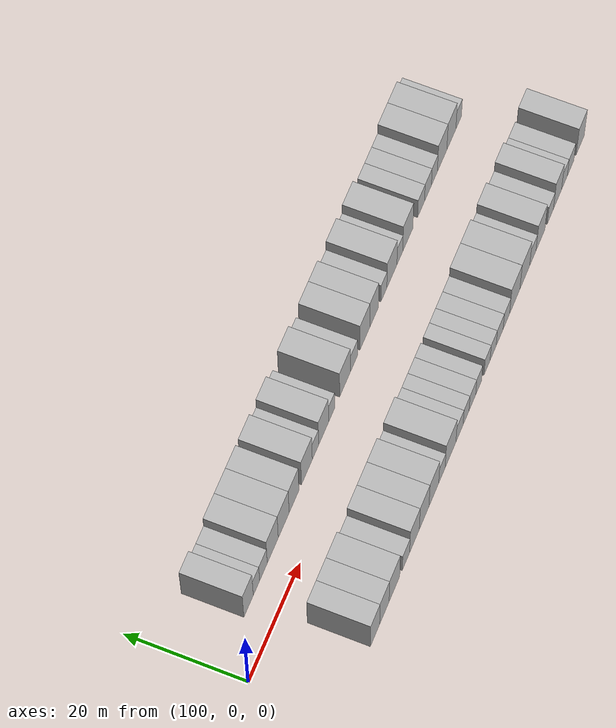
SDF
<sdf version="1.6">
 <world name="default">
  <model name="building_26">
   <static>1</static>
   <pose>110.8466 9.5000 0 0.000000 0.000000 1.570796</pose>
   <link name="link">
    <pose>0 0 4.50 0 0 0</pose>
    <collision name="collision"><geometry><box><size>10.0000 3.6311 9.0000</size></box></geometry></collision>
    <visual name="visual">
     <cast_shadows>0</cast_shadows>
     <geometry><box><size>10.0000 3.6311 9.0000</size></box></geometry>
     <material>
      <script>
       <uri>model://HANNAS_wall/materials/scripts</uri>
       <uri>model://HANNAS_wall/materials/textures</uri>
       <name>vrc/HANNAS_wall</name>
      </script>
     </material>
    </visual>
   </link>
  </model>
  <model name="building_27">
   <static>1</static>
   <pose>113.8942 9.5000 0 0.000000 0.000000 1.570796</pose>
   <link name="link">
    <pose>0 0 3.00 0 0 0</pose>
    <collision name="collision"><geometry><box><size>10.0000 2.4641 6.0000</size></box></geometry></collision>
    <visual name="visual">
     <cast_shadows>0</cast_shadows>
     <geometry><box><size>10.0000 2.4641 6.0000</size></box></geometry>
     <material>
      <script>
       <uri>model://HANNAS_wall/materials/scripts</uri>
       <uri>model://HANNAS_wall/materials/textures</uri>
       <name>vrc/HANNAS_wall</name>
      </script>
     </material>
    </visual>
   </link>
  </model>
  <model name="building_28">
   <static>1</static>
   <pose>116.6158 9.5000 0 0.000000 0.000000 1.570796</pose>
   <link name="link">
    <pose>0 0 3.00 0 0 0</pose>
    <collision name="collision"><geometry><box><size>10.0000 2.9791 6.0000</size></box></geometry></collision>
    <visual name="visual">
     <cast_shadows>0</cast_shadows>
     <geometry><box><size>10.0000 2.9791 6.0000</size></box></geometry>
     <material>
      <script>
       <uri>model://HANNAS_wall/materials/scripts</uri>
       <uri>model://HANNAS_wall/materials/textures</uri>
       <name>vrc/HANNAS_wall</name>
      </script>
     </material>
    </visual>
   </link>
  </model>
  <model name="building_29">
   <static>1</static>
   <pose>120.2576 9.5000 0 0.000000 0.000000 1.570796</pose>
   <link name="link">
    <pose>0 0 4.50 0 0 0</pose>
    <collision name="collision"><geometry><box><size>10.0000 4.3044 9.0000</size></box></geometry></collision>
    <visual name="visual">
     <cast_shadows>0</cast_shadows>
     <geometry><box><size>10.0000 4.3044 9.0000</size></box></geometry>
     <material>
      <script>
       <uri>model://HANNAS_wall/materials/scripts</uri>
       <uri>model://HANNAS_wall/materials/textures</uri>
       <name>vrc/HANNAS_wall</name>
      </script>
     </material>
    </visual>
   </link>
  </model>
  <model name="building_30">
   <static>1</static>
   <pose>124.5517 9.5000 0 0.000000 0.000000 1.570796</pose>
   <link name="link">
    <pose>0 0 4.50 0 0 0</pose>
    <collision name="collision"><geometry><box><size>10.0000 4.2838 9.0000</size></box></geometry></collision>
    <visual name="visual">
     <cast_shadows>0</cast_shadows>
     <geometry><box><size>10.0000 4.2838 9.0000</size></box></geometry>
     <material>
      <script>
       <uri>model://HANNAS_wall/materials/scripts</uri>
       <uri>model://HANNAS_wall/materials/textures</uri>
       <name>vrc/HANNAS_wall</name>
      </script>
     </material>
    </visual>
   </link>
  </model>
  <model name="building_31">
   <static>1</static>
   <pose>128.6397 9.5000 0 0.000000 0.000000 1.570796</pose>
   <link name="link">
    <pose>0 0 4.50 0 0 0</pose>
    <collision name="collision"><geometry><box><size>10.0000 3.8923 9.0000</size></box></geometry></collision>
    <visual name="visual">
     <cast_shadows>0</cast_shadows>
     <geometry><box><size>10.0000 3.8923 9.0000</size></box></geometry>
     <material>
      <script>
       <uri>model://HANNAS_wall/materials/scripts</uri>
       <uri>model://HANNAS_wall/materials/textures</uri>
       <name>vrc/HANNAS_wall</name>
      </script>
     </material>
    </visual>
   </link>
  </model>
  <model name="building_32">
   <static>1</static>
   <pose>133.7341 9.5000 0 0.000000 0.000000 1.570796</pose>
   <link name="link">
    <pose>0 0 4.50 0 0 0</pose>
    <collision name="collision"><geometry><box><size>10.0000 4.2966 9.0000</size></box></geometry></collision>
    <visual name="visual">
     <cast_shadows>0</cast_shadows>
     <geometry><box><size>10.0000 4.2966 9.0000</size></box></geometry>
     <material>
      <script>
       <uri>model://HANNAS_wall/materials/scripts</uri>
       <uri>model://HANNAS_wall/materials/textures</uri>
       <name>vrc/HANNAS_wall</name>
      </script>
     </material>
    </visual>
   </link>
  </model>
  <model name="building_33">
   <static>1</static>
   <pose>137.1597 9.5000 0 0.000000 0.000000 1.570796</pose>
   <link name="link">
    <pose>0 0 3.00 0 0 0</pose>
    <collision name="collision"><geometry><box><size>10.0000 2.5544 6.0000</size></box></geometry></collision>
    <visual name="visual">
     <cast_shadows>0</cast_shadows>
     <geometry><box><size>10.0000 2.5544 6.0000</size></box></geometry>
     <material>
      <script>
       <uri>model://HANNAS_wall/materials/scripts</uri>
       <uri>model://HANNAS_wall/materials/textures</uri>
       <name>vrc/HANNAS_wall</name>
      </script>
     </material>
    </visual>
   </link>
  </model>
  <model name="building_34">
   <static>1</static>
   <pose>140.4432 9.5000 0 0.000000 0.000000 1.570796</pose>
   <link name="link">
    <pose>0 0 4.50 0 0 0</pose>
    <collision name="collision"><geometry><box><size>10.0000 4.0127 9.0000</size></box></geometry></collision>
    <visual name="visual">
     <cast_shadows>0</cast_shadows>
     <geometry><box><size>10.0000 4.0127 9.0000</size></box></geometry>
     <material>
      <script>
       <uri>model://HANNAS_wall/materials/scripts</uri>
       <uri>model://HANNAS_wall/materials/textures</uri>
       <name>vrc/HANNAS_wall</name>
      </script>
     </material>
    </visual>
   </link>
  </model>
  <model name="building_35">
   <static>1</static>
   <pose>143.6818 9.5000 0 0.000000 0.000000 1.570796</pose>
   <link name="link">
    <pose>0 0 3.00 0 0 0</pose>
    <collision name="collision"><geometry><box><size>10.0000 2.4644 6.0000</size></box></geometry></collision>
    <visual name="visual">
     <cast_shadows>0</cast_shadows>
     <geometry><box><size>10.0000 2.4644 6.0000</size></box></geometry>
     <material>
      <script>
       <uri>model://HANNAS_wall/materials/scripts</uri>
       <uri>model://HANNAS_wall/materials/textures</uri>
       <name>vrc/HANNAS_wall</name>
      </script>
     </material>
    </visual>
   </link>
  </model>
  <model name="building_36">
   <static>1</static>
   <pose>149.0843 9.5000 0 0.000000 0.000000 1.570796</pose>
   <link name="link">
    <pose>0 0 4.50 0 0 0</pose>
    <collision name="collision"><geometry><box><size>10.0000 4.3407 9.0000</size></box></geometry></collision>
    <visual name="visual">
     <cast_shadows>0</cast_shadows>
     <geometry><box><size>10.0000 4.3407 9.0000</size></box></geometry>
     <material>
      <script>
       <uri>model://HANNAS_wall/materials/scripts</uri>
       <uri>model://HANNAS_wall/materials/textures</uri>
       <name>vrc/HANNAS_wall</name>
      </script>
     </material>
    </visual>
   </link>
  </model>
  <model name="building_37">
   <static>1</static>
   <pose>152.7458 9.5000 0 0.000000 0.000000 1.570796</pose>
   <link name="link">
    <pose>0 0 3.00 0 0 0</pose>
    <collision name="collision"><geometry><box><size>10.0000 2.9823 6.0000</size></box></geometry></collision>
    <visual name="visual">
     <cast_shadows>0</cast_shadows>
     <geometry><box><size>10.0000 2.9823 6.0000</size></box></geometry>
     <material>
      <script>
       <uri>model://HANNAS_wall/materials/scripts</uri>
       <uri>model://HANNAS_wall/materials/textures</uri>
       <name>vrc/HANNAS_wall</name>
      </script>
     </material>
    </visual>
   </link>
  </model>
  <model name="building_38">
   <static>1</static>
   <pose>157.2370 9.5000 0 0.000000 0.000000 1.570796</pose>
   <link name="link">
    <pose>0 0 4.50 0 0 0</pose>
    <collision name="collision"><geometry><box><size>10.0000 4.0002 9.0000</size></box></geometry></collision>
    <visual name="visual">
     <cast_shadows>0</cast_shadows>
     <geometry><box><size>10.0000 4.0002 9.0000</size></box></geometry>
     <material>
      <script>
       <uri>model://HANNAS_wall/materials/scripts</uri>
       <uri>model://HANNAS_wall/materials/textures</uri>
       <name>vrc/HANNAS_wall</name>
      </script>
     </material>
    </visual>
   </link>
  </model>
  <model name="building_39">
   <static>1</static>
   <pose>161.0591 9.5000 0 0.000000 0.000000 1.570796</pose>
   <link name="link">
    <pose>0 0 4.50 0 0 0</pose>
    <collision name="collision"><geometry><box><size>10.0000 3.6440 9.0000</size></box></geometry></collision>
    <visual name="visual">
     <cast_shadows>0</cast_shadows>
     <geometry><box><size>10.0000 3.6440 9.0000</size></box></geometry>
     <material>
      <script>
       <uri>model://HANNAS_wall/materials/scripts</uri>
       <uri>model://HANNAS_wall/materials/textures</uri>
       <name>vrc/HANNAS_wall</name>
      </script>
     </material>
    </visual>
   </link>
  </model>
  <model name="building_40">
   <static>1</static>
   <pose>165.1144 9.5000 0 0.000000 0.000000 1.570796</pose>
   <link name="link">
    <pose>0 0 3.00 0 0 0</pose>
    <collision name="collision"><geometry><box><size>10.0000 2.4667 6.0000</size></box></geometry></collision>
    <visual name="visual">
     <cast_shadows>0</cast_shadows>
     <geometry><box><size>10.0000 2.4667 6.0000</size></box></geometry>
     <material>
      <script>
       <uri>model://HANNAS_wall/materials/scripts</uri>
       <uri>model://HANNAS_wall/materials/textures</uri>
       <name>vrc/HANNAS_wall</name>
      </script>
     </material>
    </visual>
   </link>
  </model>
  <model name="building_41">
   <static>1</static>
   <pose>168.4434 9.5000 0 0.000000 0.000000 1.570796</pose>
   <link name="link">
    <pose>0 0 4.50 0 0 0</pose>
    <collision name="collision"><geometry><box><size>10.0000 4.1913 9.0000</size></box></geometry></collision>
    <visual name="visual">
     <cast_shadows>0</cast_shadows>
     <geometry><box><size>10.0000 4.1913 9.0000</size></box></geometry>
     <material>
      <script>
       <uri>model://HANNAS_wall/materials/scripts</uri>
       <uri>model://HANNAS_wall/materials/textures</uri>
       <name>vrc/HANNAS_wall</name>
      </script>
     </material>
    </visual>
   </link>
  </model>
  <model name="building_42">
   <static>1</static>
   <pose>171.7474 9.5000 0 0.000000 0.000000 1.570796</pose>
   <link name="link">
    <pose>0 0 3.00 0 0 0</pose>
    <collision name="collision"><geometry><box><size>10.0000 2.4167 6.0000</size></box></geometry></collision>
    <visual name="visual">
     <cast_shadows>0</cast_shadows>
     <geometry><box><size>10.0000 2.4167 6.0000</size></box></geometry>
     <material>
      <script>
       <uri>model://HANNAS_wall/materials/scripts</uri>
       <uri>model://HANNAS_wall/materials/textures</uri>
       <name>vrc/HANNAS_wall</name>
      </script>
     </material>
    </visual>
   </link>
  </model>
  <model name="building_43">
   <static>1</static>
   <pose>175.1126 9.5000 0 0.000000 0.000000 1.570796</pose>
   <link name="link">
    <pose>0 0 4.50 0 0 0</pose>
    <collision name="collision"><geometry><box><size>10.0000 4.3137 9.0000</size></box></geometry></collision>
    <visual name="visual">
     <cast_shadows>0</cast_shadows>
     <geometry><box><size>10.0000 4.3137 9.0000</size></box></geometry>
     <material>
      <script>
       <uri>model://HANNAS_wall/materials/scripts</uri>
       <uri>model://HANNAS_wall/materials/textures</uri>
       <name>vrc/HANNAS_wall</name>
      </script>
     </material>
    </visual>
   </link>
  </model>
  <model name="building_44">
   <static>1</static>
   <pose>180.7340 9.5000 0 0.000000 0.000000 1.570796</pose>
   <link name="link">
    <pose>0 0 3.00 0 0 0</pose>
    <collision name="collision"><geometry><box><size>10.0000 2.9290 6.0000</size></box></geometry></collision>
    <visual name="visual">
     <cast_shadows>0</cast_shadows>
     <geometry><box><size>10.0000 2.9290 6.0000</size></box></geometry>
     <material>
      <script>
       <uri>model://HANNAS_wall/materials/scripts</uri>
       <uri>model://HANNAS_wall/materials/textures</uri>
       <name>vrc/HANNAS_wall</name>
      </script>
     </material>
    </visual>
   </link>
  </model>
  <model name="building_45">
   <static>1</static>
   <pose>183.6713 9.5000 0 0.000000 0.000000 1.570796</pose>
   <link name="link">
    <pose>0 0 3.00 0 0 0</pose>
    <collision name="collision"><geometry><box><size>10.0000 2.9456 6.0000</size></box></geometry></collision>
    <visual name="visual">
     <cast_shadows>0</cast_shadows>
     <geometry><box><size>10.0000 2.9456 6.0000</size></box></geometry>
     <material>
      <script>
       <uri>model://HANNAS_wall/materials/scripts</uri>
       <uri>model://HANNAS_wall/materials/textures</uri>
       <name>vrc/HANNAS_wall</name>
      </script>
     </material>
    </visual>
   </link>
  </model>
  <model name="building_46">
   <static>1</static>
   <pose>186.4032 9.5000 0 0.000000 0.000000 1.570796</pose>
   <link name="link">
    <pose>0 0 3.00 0 0 0</pose>
    <collision name="collision"><geometry><box><size>10.0000 2.5182 6.0000</size></box></geometry></collision>
    <visual name="visual">
     <cast_shadows>0</cast_shadows>
     <geometry><box><size>10.0000 2.5182 6.0000</size></box></geometry>
     <material>
      <script>
       <uri>model://HANNAS_wall/materials/scripts</uri>
       <uri>model://HANNAS_wall/materials/textures</uri>
       <name>vrc/HANNAS_wall</name>
      </script>
     </material>
    </visual>
   </link>
  </model>
  <model name="building_47">
   <static>1</static>
   <pose>189.7009 9.5000 0 0.000000 0.000000 1.570796</pose>
   <link name="link">
    <pose>0 0 4.50 0 0 0</pose>
    <collision name="collision"><geometry><box><size>10.0000 4.0773 9.0000</size></box></geometry></collision>
    <visual name="visual">
     <cast_shadows>0</cast_shadows>
     <geometry><box><size>10.0000 4.0773 9.0000</size></box></geometry>
     <material>
      <script>
       <uri>model://HANNAS_wall/materials/scripts</uri>
       <uri>model://HANNAS_wall/materials/textures</uri>
       <name>vrc/HANNAS_wall</name>
      </script>
     </material>
    </visual>
   </link>
  </model>
  <model name="building_48">
   <static>1</static>
   <pose>193.6932 9.5000 0 0.000000 0.000000 1.570796</pose>
   <link name="link">
    <pose>0 0 4.50 0 0 0</pose>
    <collision name="collision"><geometry><box><size>10.0000 3.9072 9.0000</size></box></geometry></collision>
    <visual name="visual">
     <cast_shadows>0</cast_shadows>
     <geometry><box><size>10.0000 3.9072 9.0000</size></box></geometry>
     <material>
      <script>
       <uri>model://HANNAS_wall/materials/scripts</uri>
       <uri>model://HANNAS_wall/materials/textures</uri>
       <name>vrc/HANNAS_wall</name>
      </script>
     </material>
    </visual>
   </link>
  </model>
  <model name="building_49">
   <static>1</static>
   <pose>196.8556 9.5000 0 0.000000 0.000000 1.570796</pose>
   <link name="link">
    <pose>0 0 3.00 0 0 0</pose>
    <collision name="collision"><geometry><box><size>10.0000 2.4177 6.0000</size></box></geometry></collision>
    <visual name="visual">
     <cast_shadows>0</cast_shadows>
     <geometry><box><size>10.0000 2.4177 6.0000</size></box></geometry>
     <material>
      <script>
       <uri>model://HANNAS_wall/materials/scripts</uri>
       <uri>model://HANNAS_wall/materials/textures</uri>
       <name>vrc/HANNAS_wall</name>
      </script>
     </material>
    </visual>
   </link>
  </model>
  <model name="building_75">
   <static>1</static>
   <pose>113.5750 -9.5000 0 0.000000 0.000000 1.570796</pose>
   <link name="link">
    <pose>0 0 4.50 0 0 0</pose>
    <collision name="collision"><geometry><box><size>10.0000 3.6935 9.0000</size></box></geometry></collision>
    <visual name="visual">
     <cast_shadows>0</cast_shadows>
     <geometry><box><size>10.0000 3.6935 9.0000</size></box></geometry>
     <material>
      <script>
       <uri>model://HANNAS_wall/materials/scripts</uri>
       <uri>model://HANNAS_wall/materials/textures</uri>
       <name>vrc/HANNAS_wall</name>
      </script>
     </material>
    </visual>
   </link>
  </model>
  <model name="building_76">
   <static>1</static>
   <pose>117.3098 -9.5000 0 0.000000 0.000000 1.570796</pose>
   <link name="link">
    <pose>0 0 4.50 0 0 0</pose>
    <collision name="collision"><geometry><box><size>10.0000 3.7762 9.0000</size></box></geometry></collision>
    <visual name="visual">
     <cast_shadows>0</cast_shadows>
     <geometry><box><size>10.0000 3.7762 9.0000</size></box></geometry>
     <material>
      <script>
       <uri>model://HANNAS_wall/materials/scripts</uri>
       <uri>model://HANNAS_wall/materials/textures</uri>
       <name>vrc/HANNAS_wall</name>
      </script>
     </material>
    </visual>
   </link>
  </model>
  <model name="building_77">
   <static>1</static>
   <pose>121.3469 -9.5000 0 0.000000 0.000000 1.570796</pose>
   <link name="link">
    <pose>0 0 4.50 0 0 0</pose>
    <collision name="collision"><geometry><box><size>10.0000 4.2979 9.0000</size></box></geometry></collision>
    <visual name="visual">
     <cast_shadows>0</cast_shadows>
     <geometry><box><size>10.0000 4.2979 9.0000</size></box></geometry>
     <material>
      <script>
       <uri>model://HANNAS_wall/materials/scripts</uri>
       <uri>model://HANNAS_wall/materials/textures</uri>
       <name>vrc/HANNAS_wall</name>
      </script>
     </material>
    </visual>
   </link>
  </model>
  <model name="building_78">
   <static>1</static>
   <pose>125.9862 -9.5000 0 0.000000 0.000000 1.570796</pose>
   <link name="link">
    <pose>0 0 3.00 0 0 0</pose>
    <collision name="collision"><geometry><box><size>10.0000 2.9807 6.0000</size></box></geometry></collision>
    <visual name="visual">
     <cast_shadows>0</cast_shadows>
     <geometry><box><size>10.0000 2.9807 6.0000</size></box></geometry>
     <material>
      <script>
       <uri>model://HANNAS_wall/materials/scripts</uri>
       <uri>model://HANNAS_wall/materials/textures</uri>
       <name>vrc/HANNAS_wall</name>
      </script>
     </material>
    </visual>
   </link>
  </model>
  <model name="building_79">
   <static>1</static>
   <pose>129.4484 -9.5000 0 0.000000 0.000000 1.570796</pose>
   <link name="link">
    <pose>0 0 4.50 0 0 0</pose>
    <collision name="collision"><geometry><box><size>10.0000 3.9437 9.0000</size></box></geometry></collision>
    <visual name="visual">
     <cast_shadows>0</cast_shadows>
     <geometry><box><size>10.0000 3.9437 9.0000</size></box></geometry>
     <material>
      <script>
       <uri>model://HANNAS_wall/materials/scripts</uri>
       <uri>model://HANNAS_wall/materials/textures</uri>
       <name>vrc/HANNAS_wall</name>
      </script>
     </material>
    </visual>
   </link>
  </model>
  <model name="building_80">
   <static>1</static>
   <pose>133.3922 -9.5000 0 0.000000 0.000000 1.570796</pose>
   <link name="link">
    <pose>0 0 4.50 0 0 0</pose>
    <collision name="collision"><geometry><box><size>10.0000 3.9440 9.0000</size></box></geometry></collision>
    <visual name="visual">
     <cast_shadows>0</cast_shadows>
     <geometry><box><size>10.0000 3.9440 9.0000</size></box></geometry>
     <material>
      <script>
       <uri>model://HANNAS_wall/materials/scripts</uri>
       <uri>model://HANNAS_wall/materials/textures</uri>
       <name>vrc/HANNAS_wall</name>
      </script>
     </material>
    </visual>
   </link>
  </model>
  <model name="building_81">
   <static>1</static>
   <pose>137.3812 -9.5000 0 0.000000 0.000000 1.570796</pose>
   <link name="link">
    <pose>0 0 4.50 0 0 0</pose>
    <collision name="collision"><geometry><box><size>10.0000 4.0340 9.0000</size></box></geometry></collision>
    <visual name="visual">
     <cast_shadows>0</cast_shadows>
     <geometry><box><size>10.0000 4.0340 9.0000</size></box></geometry>
     <material>
      <script>
       <uri>model://HANNAS_wall/materials/scripts</uri>
       <uri>model://HANNAS_wall/materials/textures</uri>
       <name>vrc/HANNAS_wall</name>
      </script>
     </material>
    </visual>
   </link>
  </model>
  <model name="building_82">
   <static>1</static>
   <pose>140.7132 -9.5000 0 0.000000 0.000000 1.570796</pose>
   <link name="link">
    <pose>0 0 3.00 0 0 0</pose>
    <collision name="collision"><geometry><box><size>10.0000 2.6299 6.0000</size></box></geometry></collision>
    <visual name="visual">
     <cast_shadows>0</cast_shadows>
     <geometry><box><size>10.0000 2.6299 6.0000</size></box></geometry>
     <material>
      <script>
       <uri>model://HANNAS_wall/materials/scripts</uri>
       <uri>model://HANNAS_wall/materials/textures</uri>
       <name>vrc/HANNAS_wall</name>
      </script>
     </material>
    </visual>
   </link>
  </model>
  <model name="building_83">
   <static>1</static>
   <pose>144.2754 -9.5000 0 0.000000 0.000000 1.570796</pose>
   <link name="link">
    <pose>0 0 4.50 0 0 0</pose>
    <collision name="collision"><geometry><box><size>10.0000 4.4945 9.0000</size></box></geometry></collision>
    <visual name="visual">
     <cast_shadows>0</cast_shadows>
     <geometry><box><size>10.0000 4.4945 9.0000</size></box></geometry>
     <material>
      <script>
       <uri>model://HANNAS_wall/materials/scripts</uri>
       <uri>model://HANNAS_wall/materials/textures</uri>
       <name>vrc/HANNAS_wall</name>
      </script>
     </material>
    </visual>
   </link>
  </model>
  <model name="building_84">
   <static>1</static>
   <pose>148.0215 -9.5000 0 0.000000 0.000000 1.570796</pose>
   <link name="link">
    <pose>0 0 3.00 0 0 0</pose>
    <collision name="collision"><geometry><box><size>10.0000 2.9979 6.0000</size></box></geometry></collision>
    <visual name="visual">
     <cast_shadows>0</cast_shadows>
     <geometry><box><size>10.0000 2.9979 6.0000</size></box></geometry>
     <material>
      <script>
       <uri>model://HANNAS_wall/materials/scripts</uri>
       <uri>model://HANNAS_wall/materials/textures</uri>
       <name>vrc/HANNAS_wall</name>
      </script>
     </material>
    </visual>
   </link>
  </model>
  <model name="building_85">
   <static>1</static>
   <pose>150.7612 -9.5000 0 0.000000 0.000000 1.570796</pose>
   <link name="link">
    <pose>0 0 3.00 0 0 0</pose>
    <collision name="collision"><geometry><box><size>10.0000 2.4815 6.0000</size></box></geometry></collision>
    <visual name="visual">
     <cast_shadows>0</cast_shadows>
     <geometry><box><size>10.0000 2.4815 6.0000</size></box></geometry>
     <material>
      <script>
       <uri>model://HANNAS_wall/materials/scripts</uri>
       <uri>model://HANNAS_wall/materials/textures</uri>
       <name>vrc/HANNAS_wall</name>
      </script>
     </material>
    </visual>
   </link>
  </model>
  <model name="building_86">
   <static>1</static>
   <pose>153.4127 -9.5000 0 0.000000 0.000000 1.570796</pose>
   <link name="link">
    <pose>0 0 3.00 0 0 0</pose>
    <collision name="collision"><geometry><box><size>10.0000 2.8215 6.0000</size></box></geometry></collision>
    <visual name="visual">
     <cast_shadows>0</cast_shadows>
     <geometry><box><size>10.0000 2.8215 6.0000</size></box></geometry>
     <material>
      <script>
       <uri>model://HANNAS_wall/materials/scripts</uri>
       <uri>model://HANNAS_wall/materials/textures</uri>
       <name>vrc/HANNAS_wall</name>
      </script>
     </material>
    </visual>
   </link>
  </model>
  <model name="building_87">
   <static>1</static>
   <pose>156.0691 -9.5000 0 0.000000 0.000000 1.570796</pose>
   <link name="link">
    <pose>0 0 3.00 0 0 0</pose>
    <collision name="collision"><geometry><box><size>10.0000 2.4912 6.0000</size></box></geometry></collision>
    <visual name="visual">
     <cast_shadows>0</cast_shadows>
     <geometry><box><size>10.0000 2.4912 6.0000</size></box></geometry>
     <material>
      <script>
       <uri>model://HANNAS_wall/materials/scripts</uri>
       <uri>model://HANNAS_wall/materials/textures</uri>
       <name>vrc/HANNAS_wall</name>
      </script>
     </material>
    </visual>
   </link>
  </model>
  <model name="building_88">
   <static>1</static>
   <pose>159.6094 -9.5000 0 0.000000 0.000000 1.570796</pose>
   <link name="link">
    <pose>0 0 3.00 0 0 0</pose>
    <collision name="collision"><geometry><box><size>10.0000 2.5894 6.0000</size></box></geometry></collision>
    <visual name="visual">
     <cast_shadows>0</cast_shadows>
     <geometry><box><size>10.0000 2.5894 6.0000</size></box></geometry>
     <material>
      <script>
       <uri>model://HANNAS_wall/materials/scripts</uri>
       <uri>model://HANNAS_wall/materials/textures</uri>
       <name>vrc/HANNAS_wall</name>
      </script>
     </material>
    </visual>
   </link>
  </model>
  <model name="building_89">
   <static>1</static>
   <pose>162.2071 -9.5000 0 0.000000 0.000000 1.570796</pose>
   <link name="link">
    <pose>0 0 3.00 0 0 0</pose>
    <collision name="collision"><geometry><box><size>10.0000 2.6060 6.0000</size></box></geometry></collision>
    <visual name="visual">
     <cast_shadows>0</cast_shadows>
     <geometry><box><size>10.0000 2.6060 6.0000</size></box></geometry>
     <material>
      <script>
       <uri>model://HANNAS_wall/materials/scripts</uri>
       <uri>model://HANNAS_wall/materials/textures</uri>
       <name>vrc/HANNAS_wall</name>
      </script>
     </material>
    </visual>
   </link>
  </model>
  <model name="building_90">
   <static>1</static>
   <pose>164.9809 -9.5000 0 0.000000 0.000000 1.570796</pose>
   <link name="link">
    <pose>0 0 3.00 0 0 0</pose>
    <collision name="collision"><geometry><box><size>10.0000 2.9416 6.0000</size></box></geometry></collision>
    <visual name="visual">
     <cast_shadows>0</cast_shadows>
     <geometry><box><size>10.0000 2.9416 6.0000</size></box></geometry>
     <material>
      <script>
       <uri>model://HANNAS_wall/materials/scripts</uri>
       <uri>model://HANNAS_wall/materials/textures</uri>
       <name>vrc/HANNAS_wall</name>
      </script>
     </material>
    </visual>
   </link>
  </model>
  <model name="building_91">
   <static>1</static>
   <pose>167.8477 -9.5000 0 0.000000 0.000000 1.570796</pose>
   <link name="link">
    <pose>0 0 3.00 0 0 0</pose>
    <collision name="collision"><geometry><box><size>10.0000 2.7920 6.0000</size></box></geometry></collision>
    <visual name="visual">
     <cast_shadows>0</cast_shadows>
     <geometry><box><size>10.0000 2.7920 6.0000</size></box></geometry>
     <material>
      <script>
       <uri>model://HANNAS_wall/materials/scripts</uri>
       <uri>model://HANNAS_wall/materials/textures</uri>
       <name>vrc/HANNAS_wall</name>
      </script>
     </material>
    </visual>
   </link>
  </model>
  <model name="building_92">
   <static>1</static>
   <pose>171.4688 -9.5000 0 0.000000 0.000000 1.570796</pose>
   <link name="link">
    <pose>0 0 4.50 0 0 0</pose>
    <collision name="collision"><geometry><box><size>10.0000 4.4502 9.0000</size></box></geometry></collision>
    <visual name="visual">
     <cast_shadows>0</cast_shadows>
     <geometry><box><size>10.0000 4.4502 9.0000</size></box></geometry>
     <material>
      <script>
       <uri>model://HANNAS_wall/materials/scripts</uri>
       <uri>model://HANNAS_wall/materials/textures</uri>
       <name>vrc/HANNAS_wall</name>
      </script>
     </material>
    </visual>
   </link>
  </model>
  <model name="building_93">
   <static>1</static>
   <pose>175.7995 -9.5000 0 0.000000 0.000000 1.570796</pose>
   <link name="link">
    <pose>0 0 4.50 0 0 0</pose>
    <collision name="collision"><geometry><box><size>10.0000 4.2111 9.0000</size></box></geometry></collision>
    <visual name="visual">
     <cast_shadows>0</cast_shadows>
     <geometry><box><size>10.0000 4.2111 9.0000</size></box></geometry>
     <material>
      <script>
       <uri>model://HANNAS_wall/materials/scripts</uri>
       <uri>model://HANNAS_wall/materials/textures</uri>
       <name>vrc/HANNAS_wall</name>
      </script>
     </material>
    </visual>
   </link>
  </model>
  <model name="building_94">
   <static>1</static>
   <pose>179.2872 -9.5000 0 0.000000 0.000000 1.570796</pose>
   <link name="link">
    <pose>0 0 3.00 0 0 0</pose>
    <collision name="collision"><geometry><box><size>10.0000 2.7643 6.0000</size></box></geometry></collision>
    <visual name="visual">
     <cast_shadows>0</cast_shadows>
     <geometry><box><size>10.0000 2.7643 6.0000</size></box></geometry>
     <material>
      <script>
       <uri>model://HANNAS_wall/materials/scripts</uri>
       <uri>model://HANNAS_wall/materials/textures</uri>
       <name>vrc/HANNAS_wall</name>
      </script>
     </material>
    </visual>
   </link>
  </model>
  <model name="building_95">
   <static>1</static>
   <pose>182.6273 -9.5000 0 0.000000 0.000000 1.570796</pose>
   <link name="link">
    <pose>0 0 4.50 0 0 0</pose>
    <collision name="collision"><geometry><box><size>10.0000 3.9159 9.0000</size></box></geometry></collision>
    <visual name="visual">
     <cast_shadows>0</cast_shadows>
     <geometry><box><size>10.0000 3.9159 9.0000</size></box></geometry>
     <material>
      <script>
       <uri>model://HANNAS_wall/materials/scripts</uri>
       <uri>model://HANNAS_wall/materials/textures</uri>
       <name>vrc/HANNAS_wall</name>
      </script>
     </material>
    </visual>
   </link>
  </model>
  <model name="building_96">
   <static>1</static>
   <pose>186.9565 -9.5000 0 0.000000 0.000000 1.570796</pose>
   <link name="link">
    <pose>0 0 3.00 0 0 0</pose>
    <collision name="collision"><geometry><box><size>10.0000 2.7426 6.0000</size></box></geometry></collision>
    <visual name="visual">
     <cast_shadows>0</cast_shadows>
     <geometry><box><size>10.0000 2.7426 6.0000</size></box></geometry>
     <material>
      <script>
       <uri>model://HANNAS_wall/materials/scripts</uri>
       <uri>model://HANNAS_wall/materials/textures</uri>
       <name>vrc/HANNAS_wall</name>
      </script>
     </material>
    </visual>
   </link>
  </model>
  <model name="building_97">
   <static>1</static>
   <pose>190.1295 -9.5000 0 0.000000 0.000000 1.570796</pose>
   <link name="link">
    <pose>0 0 4.50 0 0 0</pose>
    <collision name="collision"><geometry><box><size>10.0000 3.6033 9.0000</size></box></geometry></collision>
    <visual name="visual">
     <cast_shadows>0</cast_shadows>
     <geometry><box><size>10.0000 3.6033 9.0000</size></box></geometry>
     <material>
      <script>
       <uri>model://HANNAS_wall/materials/scripts</uri>
       <uri>model://HANNAS_wall/materials/textures</uri>
       <name>vrc/HANNAS_wall</name>
      </script>
     </material>
    </visual>
   </link>
  </model>
  <model name="building_98">
   <static>1</static>
   <pose>193.1952 -9.5000 0 0.000000 0.000000 1.570796</pose>
   <link name="link">
    <pose>0 0 3.00 0 0 0</pose>
    <collision name="collision"><geometry><box><size>10.0000 2.5283 6.0000</size></box></geometry></collision>
    <visual name="visual">
     <cast_shadows>0</cast_shadows>
     <geometry><box><size>10.0000 2.5283 6.0000</size></box></geometry>
     <material>
      <script>
       <uri>model://HANNAS_wall/materials/scripts</uri>
       <uri>model://HANNAS_wall/materials/textures</uri>
       <name>vrc/HANNAS_wall</name>
      </script>
     </material>
    </visual>
   </link>
  </model>
  <model name="building_99">
   <static>1</static>
   <pose>195.9255 -9.5000 0 0.000000 0.000000 1.570796</pose>
   <link name="link">
    <pose>0 0 3.00 0 0 0</pose>
    <collision name="collision"><geometry><box><size>10.0000 2.9323 6.0000</size></box></geometry></collision>
    <visual name="visual">
     <cast_shadows>0</cast_shadows>
     <geometry><box><size>10.0000 2.9323 6.0000</size></box></geometry>
     <material>
      <script>
       <uri>model://HANNAS_wall/materials/scripts</uri>
       <uri>model://HANNAS_wall/materials/textures</uri>
       <name>vrc/HANNAS_wall</name>
      </script>
     </material>
    </visual>
   </link>
  </model>
  <model name="building_100">
   <static>1</static>
   <pose>200.2053 -9.5000 0 0.000000 0.000000 1.570796</pose>
   <link name="link">
    <pose>0 0 4.50 0 0 0</pose>
    <collision name="collision"><geometry><box><size>10.0000 3.6271 9.0000</size></box></geometry></collision>
    <visual name="visual">
     <cast_shadows>0</cast_shadows>
     <geometry><box><size>10.0000 3.6271 9.0000</size></box></geometry>
     <material>
      <script>
       <uri>model://HANNAS_wall/materials/scripts</uri>
       <uri>model://HANNAS_wall/materials/textures</uri>
       <name>vrc/HANNAS_wall</name>
      </script>
     </material>
    </visual>
   </link>
  </model>
 </world>
</sdf>
